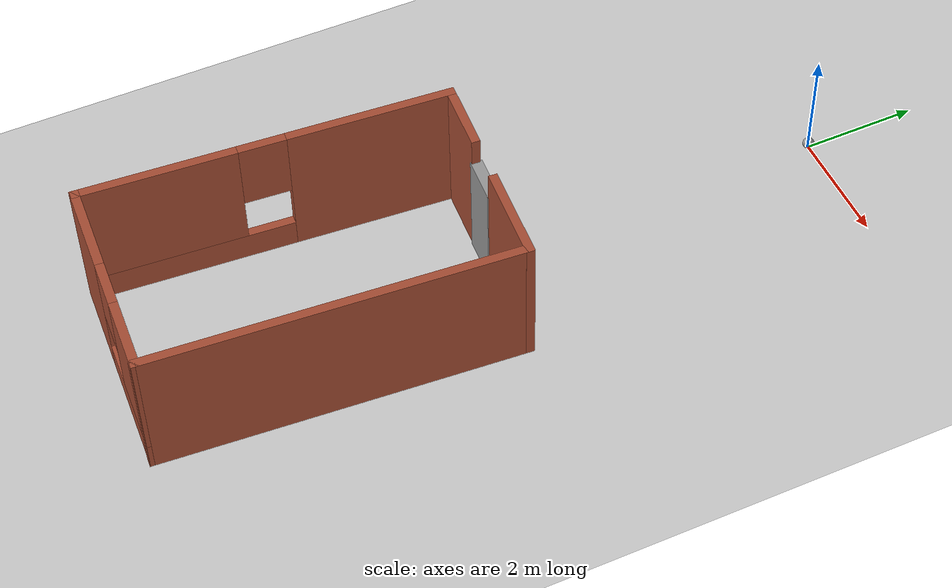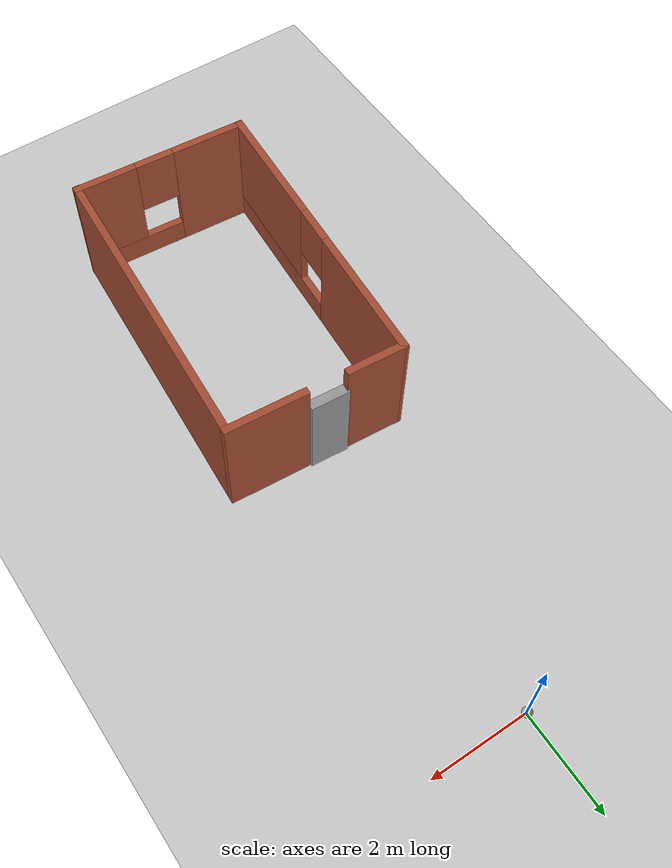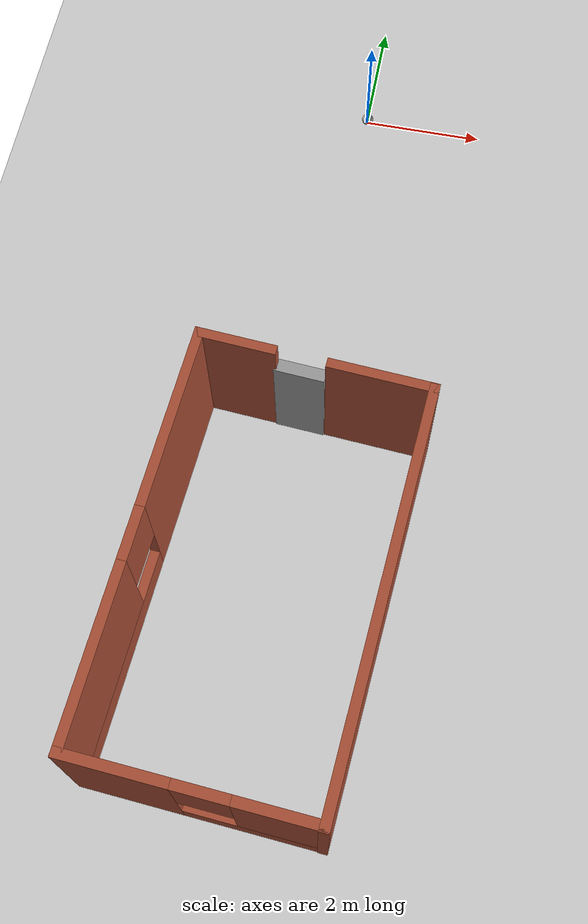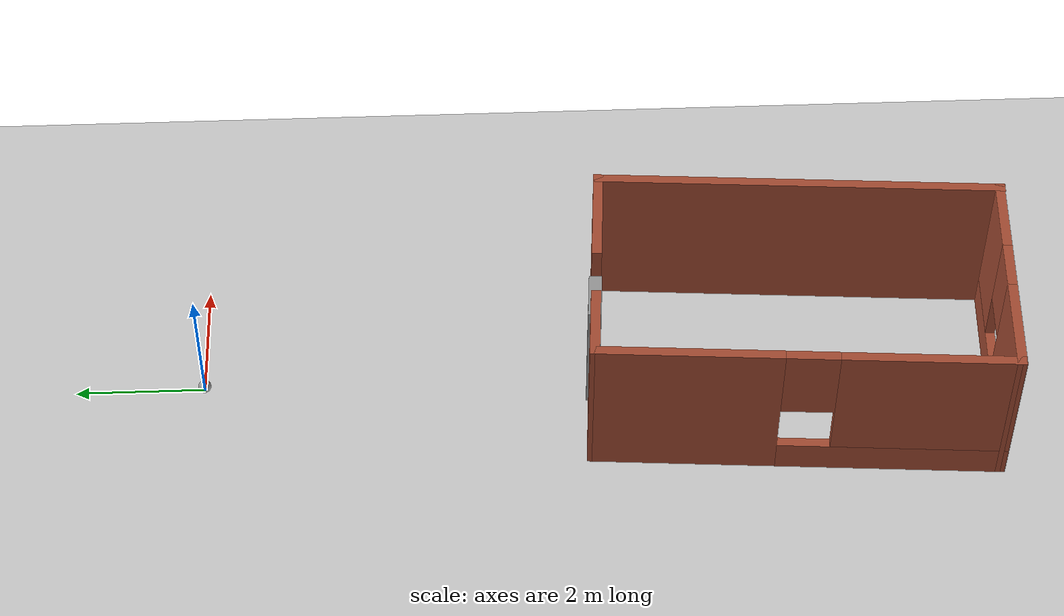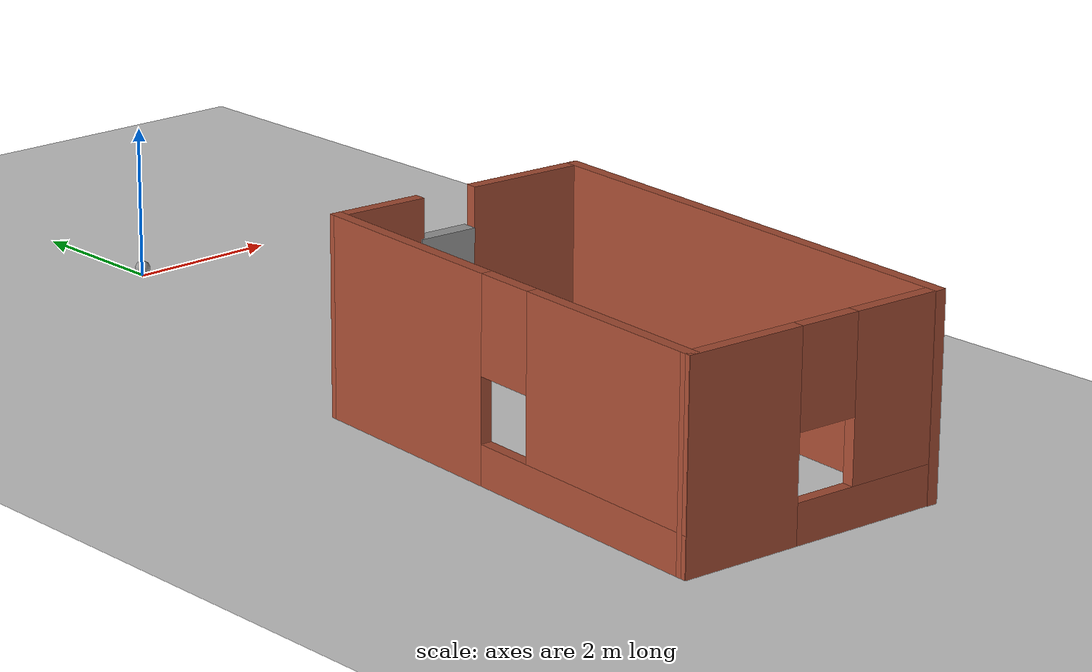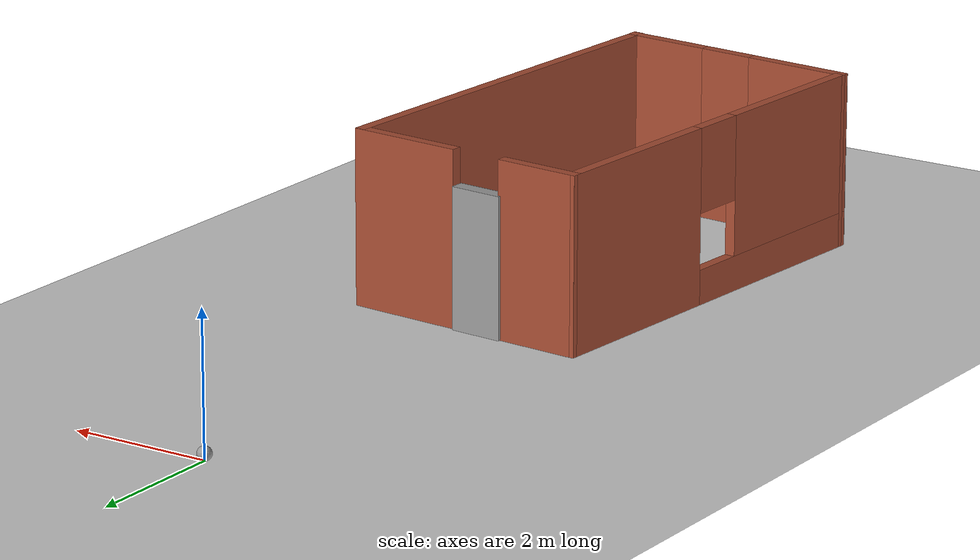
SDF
<sdf version="1.7">
 <world name="default">
  <gravity>0 0 -9.8</gravity>
  <magnetic_field>6e-06 2.3e-05 -4.2e-05</magnetic_field>
  <atmosphere type="adiabatic"/>
  <physics type="ode">
   <max_step_size>0.001</max_step_size>
   <real_time_factor>1</real_time_factor>
   <real_time_update_rate>1000</real_time_update_rate>
  </physics>
  <scene><ambient>0.4 0.4 0.4 1</ambient><background>0.7 0.7 0.7 1</background><shadows>1</shadows></scene>
  <spherical_coordinates>
   <surface_model>EARTH_WGS84</surface_model>
   <latitude_deg>0</latitude_deg>
   <longitude_deg>0</longitude_deg>
   <elevation>0</elevation>
   <heading_deg>0</heading_deg>
  </spherical_coordinates>
  <model name="House">
   <pose>0.329736 -9.18366 0 0 -0 -1.64158</pose>
   <link name="Door_0">
    <collision name="Door_0_Collision">
     <geometry><box><size>0.78 0.2 2</size></box></geometry>
     <pose>0 0 1 0 -0 0</pose>
    </collision>
    <visual name="Door_0_Visual">
     <pose>0 0 1 0 -0 0</pose>
     <geometry><box><size>0.78 0.2 2</size></box></geometry>
     <material>
      <script><uri>file://media/materials/scripts/gazebo.material</uri><name>Gazebo/Grey</name></script>
     </material>
    </visual>
    <pose>-3.10505 -0.602383 0 0 -0 -1.5708</pose>
   </link>
   <link name="Wall_0">
    <collision name="Wall_0_Collision">
     <geometry><box><size>1.25 0.15 2.5</size></box></geometry>
     <pose>0 0 1.25 0 -0 0</pose>
    </collision>
    <visual name="Wall_0_Visual">
     <pose>0 0 1.25 0 -0 0</pose>
     <geometry><box><size>1.25 0.15 2.5</size></box></geometry>
     <material>
      <script><uri>file://media/materials/scripts/gazebo.material</uri><name>Gazebo/Bricks</name></script>
      <ambient>1 1 1 1</ambient>
     </material>
     <meta><layer>0</layer></meta>
    </visual>
    <pose>-3.09505 -1.57738 0 0 -0 -1.5708</pose>
   </link>
   <link name="Wall_1">
    <pose>-0.005046 -2.13238 0 0 -0 -0.001618</pose>
    <visual name="Wall_1_Visual_0">
     <pose>-1.74074 0 1.25 0 -0 0</pose>
     <geometry><box><size>2.84852 0.15 2.5</size></box></geometry>
     <material>
      <script><uri>file://media/materials/scripts/gazebo.material</uri><name>Gazebo/Bricks</name></script>
      <ambient>1 1 1 1</ambient>
     </material>
     <meta><layer>0</layer></meta>
    </visual>
    <collision name="Wall_1_Collision_0">
     <geometry><box><size>2.84852 0.15 2.5</size></box></geometry>
     <pose>-1.74074 0 1.25 0 -0 0</pose>
    </collision>
    <visual name="Wall_1_Visual_1">
     <pose>1.42426 0 0.25 0 -0 0</pose>
     <geometry><box><size>3.48149 0.15 0.5</size></box></geometry>
     <material>
      <script><uri>file://media/materials/scripts/gazebo.material</uri><name>Gazebo/Bricks</name></script>
      <ambient>1 1 1 1</ambient>
     </material>
     <meta><layer>0</layer></meta>
    </visual>
    <collision name="Wall_1_Collision_1">
     <geometry><box><size>3.48149 0.15 0.5</size></box></geometry>
     <pose>1.42426 0 0.25 0 -0 0</pose>
    </collision>
    <visual name="Wall_1_Visual_2">
     <pose>1.82426 0 1.5 0 -0 0</pose>
     <geometry><box><size>2.68149 0.15 2</size></box></geometry>
     <material>
      <script><uri>file://media/materials/scripts/gazebo.material</uri><name>Gazebo/Bricks</name></script>
      <ambient>1 1 1 1</ambient>
     </material>
     <meta><layer>0</layer></meta>
    </visual>
    <collision name="Wall_1_Collision_2">
     <geometry><box><size>2.68149 0.15 2</size></box></geometry>
     <pose>1.82426 0 1.5 0 -0 0</pose>
    </collision>
    <visual name="Wall_1_Visual_3">
     <pose>0.083514 0 1.9 0 -0 0</pose>
     <geometry><box><size>0.8 0.15 1.2</size></box></geometry>
     <material>
      <script><uri>file://media/materials/scripts/gazebo.material</uri><name>Gazebo/Bricks</name></script>
      <ambient>1 1 1 1</ambient>
     </material>
     <meta><layer>0</layer></meta>
    </visual>
    <collision name="Wall_1_Collision_3">
     <geometry><box><size>0.8 0.15 1.2</size></box></geometry>
     <pose>0.083514 0 1.9 0 -0 0</pose>
    </collision>
   </link>
   <link name="Wall_2">
    <pose>3.08995 -0.377383 0 0 -0 1.57364</pose>
    <visual name="Wall_2_Visual_0">
     <pose>-1.04636 0 1.25 0 -0 0</pose>
     <geometry><box><size>1.57733 0.15 2.5</size></box></geometry>
     <material>
      <script><uri>file://media/materials/scripts/gazebo.material</uri><name>Gazebo/Bricks</name></script>
      <ambient>1 1 1 1</ambient>
     </material>
     <meta><layer>0</layer></meta>
    </visual>
    <collision name="Wall_2_Collision_0">
     <geometry><box><size>1.57733 0.15 2.5</size></box></geometry>
     <pose>-1.04636 0 1.25 0 -0 0</pose>
    </collision>
    <visual name="Wall_2_Visual_1">
     <pose>0.788663 0 0.25 0 -0 0</pose>
     <geometry><box><size>2.09273 0.15 0.5</size></box></geometry>
     <material>
      <script><uri>file://media/materials/scripts/gazebo.material</uri><name>Gazebo/Bricks</name></script>
      <ambient>1 1 1 1</ambient>
     </material>
     <meta><layer>0</layer></meta>
    </visual>
    <collision name="Wall_2_Collision_1">
     <geometry><box><size>2.09273 0.15 0.5</size></box></geometry>
     <pose>0.788663 0 0.25 0 -0 0</pose>
    </collision>
    <visual name="Wall_2_Visual_2">
     <pose>1.18866 0 1.5 0 -0 0</pose>
     <geometry><box><size>1.29273 0.15 2</size></box></geometry>
     <material>
      <script><uri>file://media/materials/scripts/gazebo.material</uri><name>Gazebo/Bricks</name></script>
      <ambient>1 1 1 1</ambient>
     </material>
     <meta><layer>0</layer></meta>
    </visual>
    <collision name="Wall_2_Collision_2">
     <geometry><box><size>1.29273 0.15 2</size></box></geometry>
     <pose>1.18866 0 1.5 0 -0 0</pose>
    </collision>
    <visual name="Wall_2_Visual_3">
     <pose>0.142298 0 1.9 0 -0 0</pose>
     <geometry><box><size>0.8 0.15 1.2</size></box></geometry>
     <material>
      <script><uri>file://media/materials/scripts/gazebo.material</uri><name>Gazebo/Bricks</name></script>
      <ambient>1 1 1 1</ambient>
     </material>
     <meta><layer>0</layer></meta>
    </visual>
    <collision name="Wall_2_Collision_3">
     <geometry><box><size>0.8 0.15 1.2</size></box></geometry>
     <pose>0.142298 0 1.9 0 -0 0</pose>
    </collision>
   </link>
   <link name="Wall_3">
    <collision name="Wall_3_Collision">
     <geometry><box><size>6.33001 0.15 2.5</size></box></geometry>
     <pose>0 0 1.25 0 -0 0</pose>
    </collision>
    <visual name="Wall_3_Visual">
     <pose>0 0 1.25 0 -0 0</pose>
     <geometry><box><size>6.33001 0.15 2.5</size></box></geometry>
     <material>
      <script><uri>file://media/materials/scripts/gazebo.material</uri><name>Gazebo/Bricks</name></script>
      <ambient>1 1 1 1</ambient>
     </material>
     <meta><layer>0</layer></meta>
    </visual>
    <pose>0.004954 1.38762 0 0 -0 3.13998</pose>
   </link>
   <link name="Wall_4">
    <collision name="Wall_4_Collision">
     <geometry><box><size>1.6703 0.15 2.5</size></box></geometry>
     <pose>0 0 1.25 0 -0 0</pose>
    </collision>
    <visual name="Wall_4_Visual">
     <pose>0 0 1.25 0 -0 0</pose>
     <geometry><box><size>1.6703 0.15 2.5</size></box></geometry>
     <material>
      <script><uri>file://media/materials/scripts/gazebo.material</uri><name>Gazebo/Bricks</name></script>
      <ambient>1 1 1 1</ambient>
     </material>
     <meta><layer>0</layer></meta>
    </visual>
    <pose>-3.09505 0.632617 0 0 -0 -1.5708</pose>
   </link>
   <static>1</static>
  </model>
  <model name="ground_plane">
   <static>1</static>
   <link name="link">
    <collision name="collision">
     <geometry><plane><normal>0 0 1</normal><size>100 100</size></plane></geometry>
     <surface>
      <contact><collide_bitmask>65535</collide_bitmask></contact>
      <friction><ode><mu>100</mu><mu2>50</mu2></ode></friction>
     </surface>
    </collision>
    <visual name="visual">
     <cast_shadows>0</cast_shadows>
     <geometry><plane><normal>0 0 1</normal><size>100 100</size></plane></geometry>
     <material>
      <script><uri>file://media/materials/scripts/gazebo.material</uri><name>Gazebo/Grey</name></script>
     </material>
    </visual>
   </link>
  </model>
  <light name="sun" type="directional">
   <pose>-13.9701 7.70498 10 0 -0 0</pose>
   <diffuse>0.8 0.8 0.8 1</diffuse>
   <specular>0.2 0.2 0.2 1</specular>
   <attenuation>
    <range>1000</range>
    <constant>0.9</constant>
    <linear>0.01</linear>
    <quadratic>0.001</quadratic>
   </attenuation>
   <direction>-0.5 0.1 -0.9</direction>
   <spot><inner_angle>0</inner_angle><outer_angle>0</outer_angle><falloff>0</falloff></spot>
  </light>
  <light name="user_directional_light_0" type="directional">
   <pose>7.8128 6.99663 1 0 -0 0</pose>
   <diffuse>0.5 0.5 0.5 1</diffuse>
   <specular>0.1 0.1 0.1 1</specular>
   <direction>0.1 0.1 -0.9</direction>
   <attenuation>
    <range>20</range>
    <constant>0.5</constant>
    <linear>0.01</linear>
    <quadratic>0.001</quadratic>
   </attenuation>
   <spot><inner_angle>0</inner_angle><outer_angle>0</outer_angle><falloff>0</falloff></spot>
  </light>
  <model name="my_ball_0">
   <link name="link_0">
    <inertial>
     <mass>0.00282683</mass>
     <inertia>
      <ixx>5.65e-06</ixx>
      <ixy>0</ixy>
      <ixz>0</ixz>
      <iyy>5.65e-06</iyy>
      <iyz>0</iyz>
      <izz>5.65e-06</izz>
     </inertia>
    </inertial>
    <visual name="visual">
     <geometry><sphere><radius>0.1</radius></sphere></geometry>
     <material>
      <lighting>1</lighting>
      <script><uri>file://media/materials/scripts/gazebo.material</uri><name>Gazebo/Grey</name></script>
      <shader type="pixel"><normal_map>__default__</normal_map></shader>
      <ambient>1 1 1 1</ambient>
      <diffuse>1 1 1 1</diffuse>
      <specular>1 1 1 1</specular>
      <emissive>1 1 1 1</emissive>
     </material>
    </visual>
    <collision name="collision">
     <geometry><sphere><radius>0.1</radius></sphere></geometry>
     <surface>
      <friction>
       <ode><mu>1</mu><mu2>1</mu2><fdir1>0 0 0</fdir1><slip1>0</slip1><slip2>0</slip2></ode>
       <torsional>
        <coefficient>1</coefficient>
        <patch_radius>0</patch_radius>
        <surface_radius>0</surface_radius>
        <use_patch_radius>1</use_patch_radius>
        <ode><slip>0</slip></ode>
       </torsional>
      </friction>
      <bounce><restitution_coefficient>0</restitution_coefficient><threshold>1e+06</threshold></bounce>
      <contact>
       <collide_without_contact>0</collide_without_contact>
       <collide_without_contact_bitmask>1</collide_without_contact_bitmask>
       <collide_bitmask>1</collide_bitmask>
       <ode>
        <soft_cfm>0</soft_cfm>
        <soft_erp>0.2</soft_erp>
        <kp>1e+13</kp>
        <kd>1</kd>
        <max_vel>0.01</max_vel>
        <min_depth>0</min_depth>
       </ode>
       <bullet>
        <split_impulse>1</split_impulse>
        <split_impulse_penetration_threshold>-0.01</split_impulse_penetration_threshold>
        <soft_cfm>0</soft_cfm>
        <soft_erp>0.2</soft_erp>
        <kp>1e+13</kp>
        <kd>1</kd>
       </bullet>
      </contact>
     </surface>
    </collision>
   </link>
   <static>0</static>
   <pose>0 0 0.1 0 -0 0</pose>
  </model>
 </world>
</sdf>
